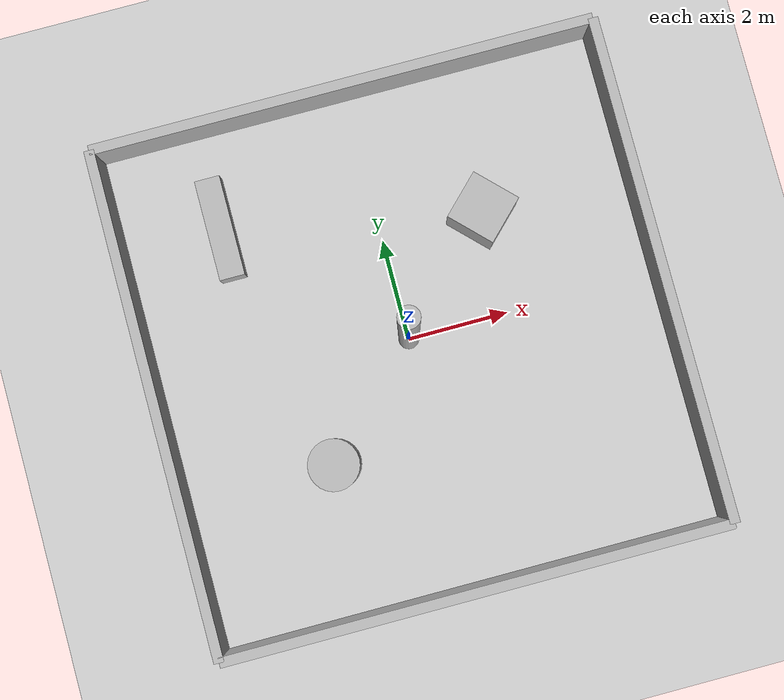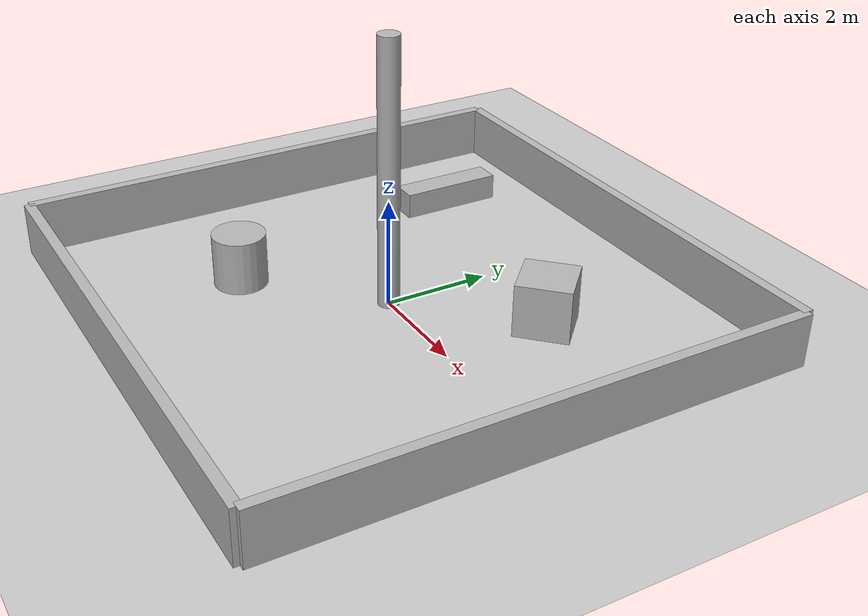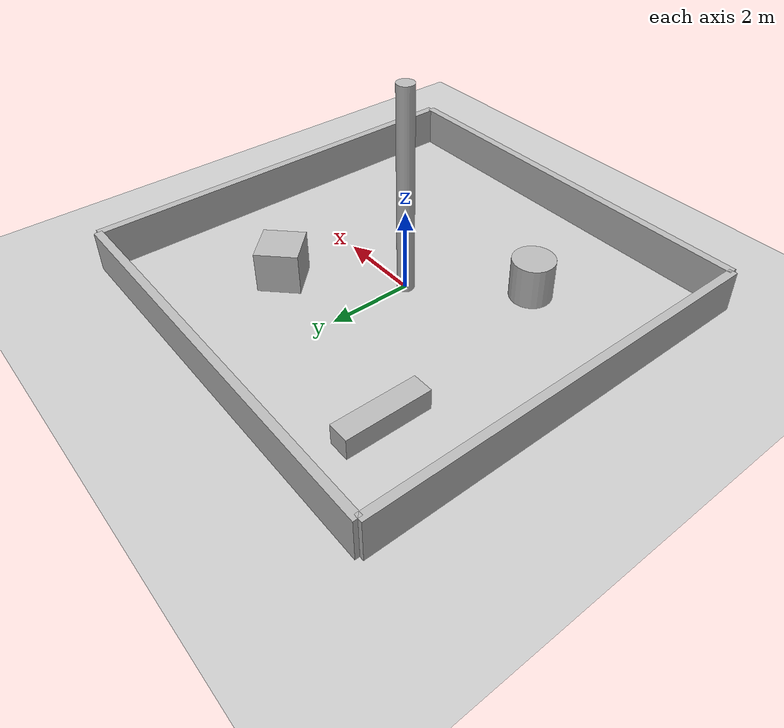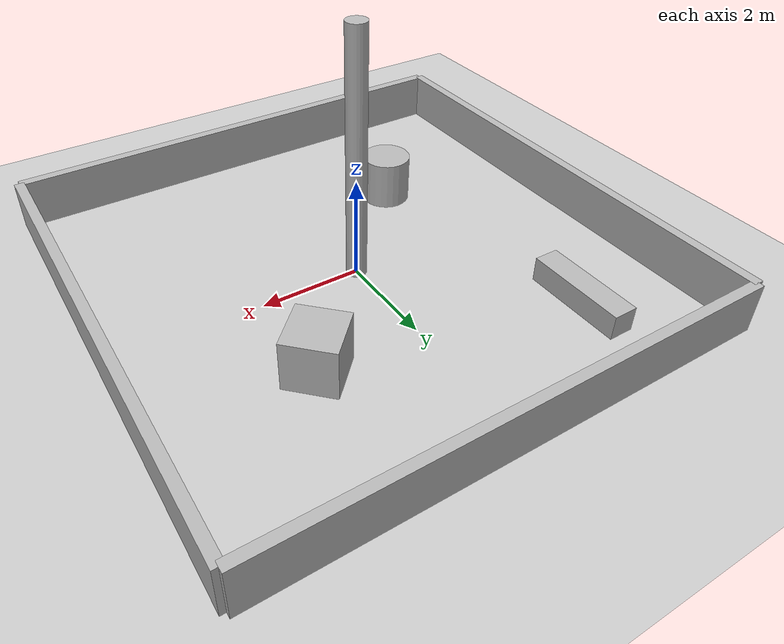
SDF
<?xml version="1.0" ?>
<sdf version="1.6">
  <world name="default">
    <include>
      <uri>model://ground_plane</uri>
    </include>
    <include>
      <uri>model://sun</uri>
    </include>

    <!-- Central Tower -->
    <model name="central_tower">
      <static>true</static>
      <pose>0 0 2.5 0 0 0</pose>
      <link name="link">
        <collision name="collision">
          <geometry><cylinder><radius>0.2</radius><length>5.0</length></cylinder></geometry>
        </collision>
        <visual name="visual">
          <geometry><cylinder><radius>0.2</radius><length>5.0</length></cylinder></geometry>
        </visual>
        <sensor type="ray" name="tower_ray_sensor">
          <pose>0 0 2.5 0 0 0</pose>
          <visualize>true</visualize>
          <update_rate>10</update_rate>
          <ray>
            <scan>
              <horizontal>
                <samples>360</samples>
                <resolution>1</resolution>
                <min_angle>-3.14159</min_angle>
                <max_angle>3.14159</max_angle>
              </horizontal>
            </scan>
            <range>
              <min>0.1</min>
              <max>30.0</max>
              <resolution>0.01</resolution>
            </range>
          </ray>
          <plugin name="gazebo_ros_ray_sensor" filename="libgazebo_ros_ray_sensor.so">
              <ros>
                <namespace>/tower</namespace>
                <remapping>~/out:=scan</remapping>
              </ros>
          </plugin>
        </sensor>
      </link>
    </model>

    <!-- Outer Walls -->
    <model name="wall_north">
      <static>true</static>
      <pose>0 5 0.5 0 0 0</pose>
      <link name="link">
        <collision name="collision">
          <geometry><box><size>10 0.2 1</size></box></geometry>
        </collision>
        <visual name="visual">
          <geometry><box><size>10 0.2 1</size></box></geometry>
        </visual>
      </link>
    </model>

    <model name="wall_south">
      <static>true</static>
      <pose>0 -5 0.5 0 0 0</pose>
      <link name="link">
        <collision name="collision">
          <geometry><box><size>10 0.2 1</size></box></geometry>
        </collision>
        <visual name="visual">
          <geometry><box><size>10 0.2 1</size></box></geometry>
        </visual>
      </link>
    </model>

    <model name="wall_east">
      <static>true</static>
      <pose>5 0 0.5 0 0 1.5707</pose>
      <link name="link">
        <collision name="collision">
          <geometry><box><size>10 0.2 1</size></box></geometry>
        </collision>
        <visual name="visual">
          <geometry><box><size>10 0.2 1</size></box></geometry>
        </visual>
      </link>
    </model>

    <model name="wall_west">
      <static>true</static>
      <pose>-5 0 0.5 0 0 1.5707</pose>
      <link name="link">
        <collision name="collision">
          <geometry><box><size>10 0.2 1</size></box></geometry>
        </collision>
        <visual name="visual">
          <geometry><box><size>10 0.2 1</size></box></geometry>
        </visual>
      </link>
    </model>

    <!-- Obstacles -->
    <model name="box_1">
      <static>true</static>
      <pose>2 2 0.5 0 0 0.785</pose>
      <link name="link">
        <collision name="collision">
          <geometry><box><size>1 1 1</size></box></geometry>
        </collision>
        <visual name="visual">
          <geometry><box><size>1 1 1</size></box></geometry>
        </visual>
      </link>
    </model>

    <model name="cylinder_1">
      <static>true</static>
      <pose>-2 -2 0.5 0 0 0</pose>
      <link name="link">
        <collision name="collision">
          <geometry><cylinder><radius>0.5</radius><length>1.0</length></cylinder></geometry>
        </collision>
        <visual name="visual">
          <geometry><cylinder><radius>0.5</radius><length>1.0</length></cylinder></geometry>
        </visual>
      </link>
    </model>

    <model name="box_2">
      <static>true</static>
      <pose>-3 3 0.25 0 0 0</pose>
      <link name="link">
        <collision name="collision">
          <geometry><box><size>0.5 2 0.5</size></box></geometry>
        </collision>
        <visual name="visual">
          <geometry><box><size>0.5 2 0.5</size></box></geometry>
        </visual>
      </link>
    </model>

  </world>
</sdf>
